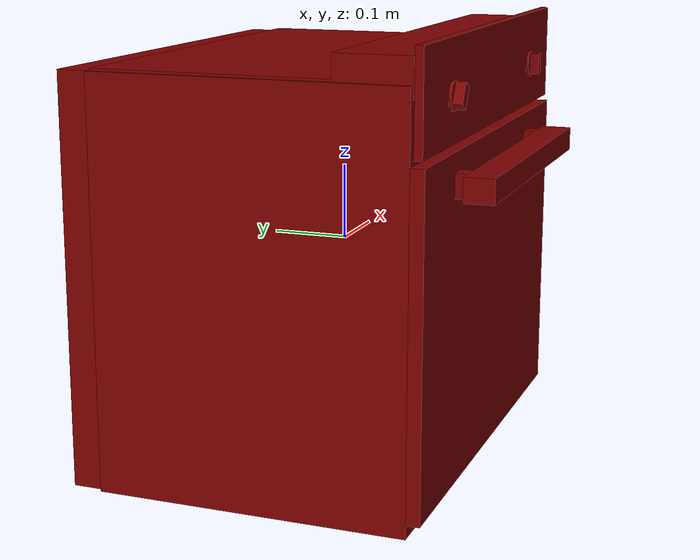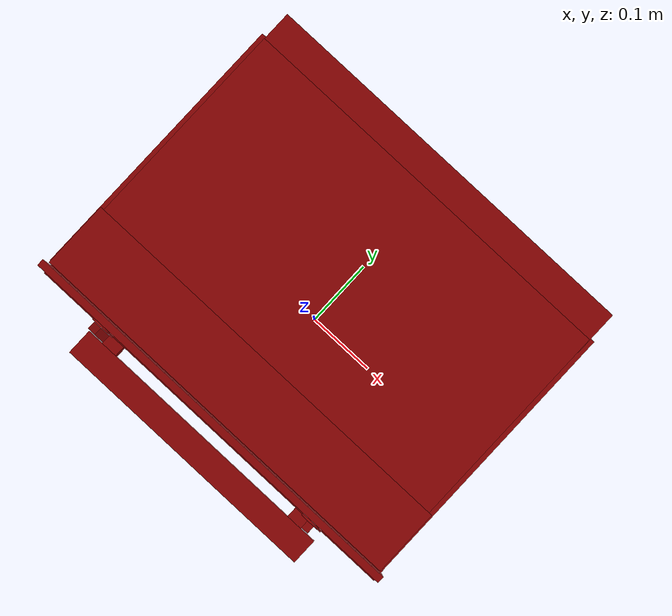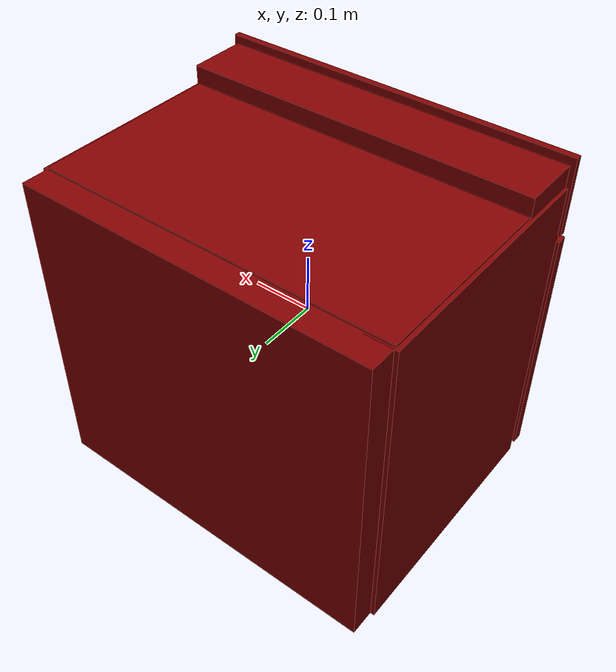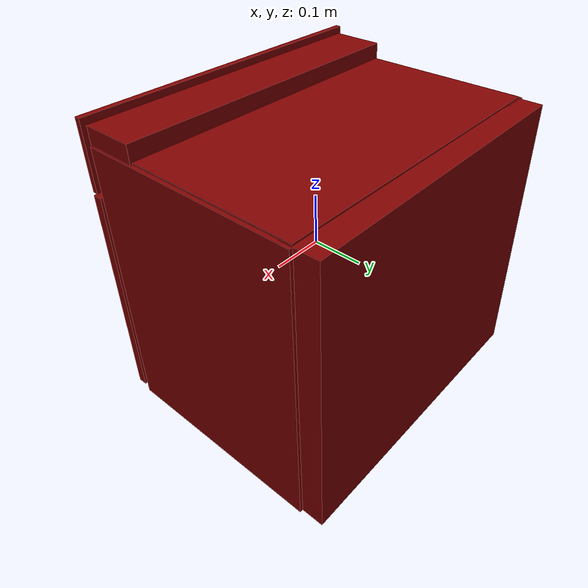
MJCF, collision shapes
<mujoco model="model">
  <compiler angle="radian"/>
  <asset>
    <mesh file="visuals/Body001.obj" name="Body001_vis"/>
    <mesh file="visuals/Door001.obj" name="Door001_vis"/>
    <mesh file="visuals/Door001_Clear.obj" name="Door001_Clear_vis"/>
    <mesh file="visuals/Knob001.obj" name="Knob001_vis"/>
    <mesh file="visuals/Knob002.obj" name="Knob002_vis"/>
    <mesh file="visuals/Shelf001.obj" name="Shelf001_vis"/>
    <texture file="visuals/T_BC001.png" name="Body001_material" type="2d"/>
    <material name="Body001_material" rgba="1 1 1 1.0" texture="Body001_material" shininess="1" specular="1"/>
    <texture file="visuals/T_BC001.png" name="Door001_material" type="2d"/>
    <material name="Door001_material" rgba="1 1 1 1.0" texture="Door001_material" shininess="1" specular="1"/>
    <texture file="visuals/T_BC001.png" name="Door001_Clear_material" type="2d"/>
    <material name="Door001_Clear_material" rgba="1 1 1 0.7999999523162842" texture="Door001_Clear_material" shininess="0.4472135901451111" specular="0.3103448502657381"/>
    <texture file="visuals/T_BC001.png" name="Knob001_material" type="2d"/>
    <material name="Knob001_material" rgba="1 1 1 1.0" texture="Knob001_material" shininess="0.4472135901451111" specular="0.3103448502657381"/>
    <texture file="visuals/T_BC001.png" name="Knob002_material" type="2d"/>
    <material name="Knob002_material" rgba="1 1 1 1.0" texture="Knob002_material" shininess="0.4472135901451111" specular="0.3103448502657381"/>
    <texture file="visuals/T_BC001.png" name="Shelf001_material" type="2d"/>
    <material name="Shelf001_material" rgba="1 1 1 1.0" texture="Shelf001_material" shininess="0.4472135901451111" specular="0.3103448502657381"/>
  </asset>
  <default>
    <default class="visual">
      <geom conaffinity="0" contype="0" group="1" type="mesh"/>
    </default>
    <default class="collision">
      <geom group="0" rgba="0.5 0 0 0.5"/>
    </default>
    <default class="spawn">
      <geom group="0" rgba="1 1 1 0.5" contype="0" conaffinity="0"/>
      <site group="0" rgba="1 1 1 0.5"/>
    </default>
    <default class="region">
      <geom group="1" conaffinity="0" contype="0" rgba="0 1 0 0"/>
    </default>
  </default>
  <worldbody>
    <body>
      <body name="object">
        <geom mesh="Body001_vis" type="mesh" solimp="0.998 0.998 0.001" solref="0.001 1" density="100" friction="0.95 0.3 0.1" class="visual" material="Body001_material"/>
        <geom class="collision" type="box" pos="-0.000111 0.031908 -0.267604" size="0.29171276092529297 0.2194117158651352 0.019484931603074074" quat="1.0 0.0 0.0 0.0"/>
        <geom class="collision" type="box" pos="0.000346 -0.141145 0.258247" size="0.29411524534225464 0.04925039783120155 0.024248898029327393" quat="1.0 0.0 0.0 0.0"/>
        <geom class="collision" type="box" pos="0.274134 0.016046 -0.018899" size="0.023398851975798607 0.20375710725784302 0.26818951964378357" quat="1.0 0.0 0.0 0.0"/>
        <geom class="collision" type="box" pos="-0.000111 0.228619 -0.018899" size="0.2917129397392273 0.03347042575478554 0.26818957924842834" quat="1.0 0.0 0.0 0.0"/>
        <geom class="collision" type="box" pos="-0.274425 0.016493 -0.018899" size="0.023942943662405014 0.20433248579502106 0.2681896388530731" quat="1.0 0.0 0.0 0.0"/>
        <geom class="collision" type="box" pos="0.000739 -0.198023 0.230930" size="0.3016512095928192 0.0051789721474051476 0.06386491656303406" quat="1.0 0.0 0.0 0.0"/>
        <geom class="collision" type="box" pos="-0.000559 0.059745 0.243233" size="0.29126429557800293 0.1580100655555725 0.009234687313437462" quat="1.0 0.0 0.0 0.0"/>
        <geom class="collision" type="box" pos="-0.000559 0.016883 0.180336" size="0.29126429557800293 0.20087198913097382 0.05729734152555466" quat="1.0 0.0 0.0 0.0"/>
        <body name="Door001">
          <joint axis="1.0 0.0 0.0" pos="-0.000000 -0.200739 -0.281283" limited="true" name="Door001_joint" range="0.0 1.5707963267948966" type="hinge" damping="1" frictionloss="1" armature=".01" stiffness="0.05"/>
          <geom mesh="Door001_vis" type="mesh" solimp="0.998 0.998 0.001" solref="0.001 1" density="100" friction="0.95 0.3 0.1" class="visual" material="Door001_material"/>
          <geom class="collision" type="box" pos="-0.000631 -0.197894 -0.053900" size="0.3020551800727844 0.008825544267892838 0.21300949156284332" quat="1.0 0.0 0.0 0.0"/>
          <geom class="collision" type="box" pos="0.000814 -0.179160 -0.064816" size="0.23558567464351654 0.015448496676981449 0.15735863149166107" quat="1.0 0.0 0.0 0.0"/>
          <geom class="collision" type="box" pos="-0.170618 -0.218124 0.118514" size="0.012437110766768456 0.012890174053609371 0.01561253797262907" quat="1.0 0.0 0.0 0.0"/>
          <geom class="collision" type="box" pos="0.000215 -0.242549 0.119178" size="0.2072993814945221 0.019436176866292953 0.01561255194246769" quat="1.0 0.0 0.0 0.0"/>
          <geom class="collision" type="box" pos="0.171075 -0.218124 0.118514" size="0.012437124736607075 0.01289020199328661 0.015612565912306309" quat="1.0 0.0 0.0 0.0"/>
          <body name="Door001_Clear">
            <geom mesh="Door001_Clear_vis" type="mesh" solimp="0.998 0.998 0.001" solref="0.001 1" density="100" friction="0.95 0.3 0.1" class="visual" material="Door001_Clear_material"/>
            <geom class="collision" type="box" pos="-0.000111 -0.180967 -0.064988" size="0.16974835097789764 0.02312706783413887 0.11725851148366928" quat="1.0 0.0 0.0 0.0"/>
          </body>
        </body>
        <body name="Knob001">
          <joint axis="0.0 1.0 0.0" pos="-0.189085 -0.209444 0.227153" limited="true" name="Knob001_joint" range="0.0 5.061454830783556" type="hinge" damping="1" frictionloss="1" armature=".01" stiffness="0.05"/>
          <geom mesh="Knob001_vis" type="mesh" solimp="0.998 0.998 0.001" solref="0.001 1" density="100" friction="0.95 0.3 0.1" class="visual" material="Knob001_material"/>
          <geom class="collision" type="cylinder" pos="-0.188605 -0.205155 0.226011" size="0.01806890033185482 0.001686516567133367" quat="0.7071067094802856 0.7071068286895752 0.0 0.0"/>
          <geom class="collision" type="box" pos="-0.188924 -0.213548 0.226717" size="0.008250432088971138 0.006144003476947546 0.014450949616730213" quat="0.9671083092689514 -1.6025834825850183e-10 0.2543649971485138 -5.980698714047605e-10"/>
        </body>
        <body name="Knob002">
          <joint axis="0.0 -1.0 0.0" pos="0.187437 -0.209444 0.225280" limited="true" name="Knob002_joint" range="-1.0471975511965976 3.141592653589793" type="hinge" damping="1" frictionloss="1" armature=".01" stiffness="0.05"/>
          <geom mesh="Knob002_vis" type="mesh" solimp="0.998 0.998 0.001" solref="0.001 1" density="100" friction="0.95 0.3 0.1" class="visual" material="Knob002_material"/>
          <geom class="collision" type="cylinder" pos="0.187367 -0.205901 0.225033" size="0.017057839781045914 0.0015851097414270043" quat="0.7071067094802856 0.7071068286895752 0.0 0.0"/>
          <geom class="collision" type="box" pos="0.187504 -0.213540 0.225527" size="0.005599156953394413 0.00600207457318902 0.01411654893308878" quat="0.9999803304672241 -9.978440930184947e-16 -0.006273725535720587 -8.42934888556357e-10"/>
        </body>
        <body name="Shelf001">
          <joint axis="0.0 -1.0 0.0" pos="-0.000159 -0.001673 -0.052350" limited="true" name="Shelf001_joint" range="0.0 0.23" type="slide" damping="1" frictionloss="1" armature=".01" stiffness="0.05"/>
          <geom mesh="Shelf001_vis" type="mesh" solimp="0.998 0.998 0.001" solref="0.001 1" density="100" friction="0.95 0.3 0.1" class="visual" material="Shelf001_material"/>
          <geom class="collision" type="box" pos="0.000766 0.013277 -0.051562" size="0.22974561154842377 0.11763344705104828 0.004281292669475079" quat="1.0 0.0 0.0 0.0"/>
          <geom class="collision" type="box" pos="-0.232801 0.013277 -0.055469" size="0.003588530234992504 0.11763344705104828 0.008187798783183098" quat="1.0 0.0 0.0 0.0"/>
          <geom class="collision" type="box" pos="-0.240010 0.013277 -0.062678" size="0.009428150951862335 0.11763344705104828 0.003153639379888773" quat="1.0 0.0 0.0 0.0"/>
          <geom class="collision" type="box" pos="0.240862 0.013277 -0.062678" size="0.009428150951862335 0.11763344705104828 0.003153639379888773" quat="1.0 0.0 0.0 0.0"/>
          <geom class="collision" type="box" pos="0.233653 0.013277 -0.055469" size="0.003588530234992504 0.11763344705104828 0.008187798783183098" quat="1.0 0.0 0.0 0.0"/>
          <geom class="collision" type="box" pos="-0.000455 0.126780 -0.034183" size="0.13294032216072083 0.0013344165636226535 0.001764212385751307" quat="1.0 0.0 0.0 0.0"/>
          <geom class="collision" type="box" pos="0.131426 0.126780 -0.042405" size="0.0010602232068777084 0.0013344165636226535 0.00998667348176241" quat="1.0 0.0 0.0 0.0"/>
          <geom class="collision" type="box" pos="-0.132655 0.126780 -0.042405" size="0.0010602232068777084 0.0013344165636226535 0.00998667348176241" quat="1.0 0.0 0.0 0.0"/>
        </body>
        <geom class="region" name="reg_main" type="box" pos="4.499999999990623e-06 0.024647500000000003 -0.0029639999999999944" size="0.3026805 0.23090850000000002 0.295755"/>
        <geom class="region" name="reg_int" type="box" pos="-0.0011840000000000045 0.005219499999999988 -0.06829550000000001" size="0.24082399999999998 0.1951725 0.1785685"/>
      </body>
    </body>
  </worldbody>
  <actuator>
    <motor name="Door001_joint_actuator" joint="Door001_joint" gear="45"/>
    <motor name="Knob001_joint_actuator" joint="Knob001_joint" gear="10"/>
    <motor name="Knob002_joint_actuator" joint="Knob002_joint" gear="10"/>
    <motor name="Shelf001_joint_actuator" joint="Shelf001_joint" gear="10"/>
  </actuator>
</mujoco>
